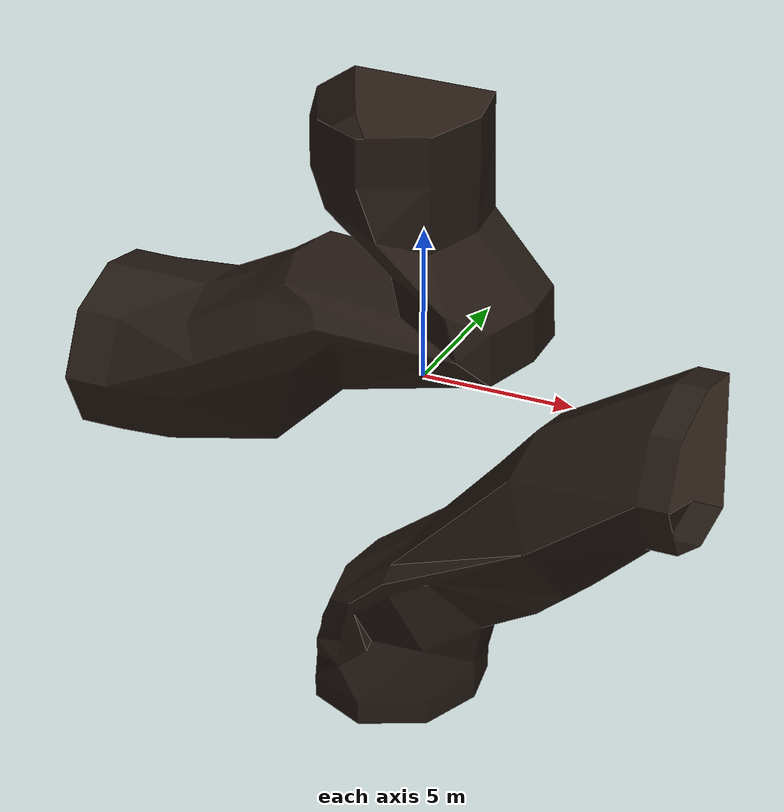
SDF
<?xml version="1.0"?>
<sdf version="1.6">
  <model name="cave_tile_4">
    <static>true</static>
    <link name="link">
      <pose>0 0 0 1.570796 0 0</pose>
      <collision name="collision">
        <geometry>
          <mesh>
            <uri>model://cave_tile_4/meshes/cave_tile_4.dae</uri>
          </mesh>
        </geometry>
      </collision>
      <visual name="visual">
        <geometry>
          <mesh>
            <uri>model://cave_tile_4/meshes/cave_tile_4.dae</uri>
          </mesh>
        </geometry>
      </visual>
    </link>
  </model>
</sdf>
